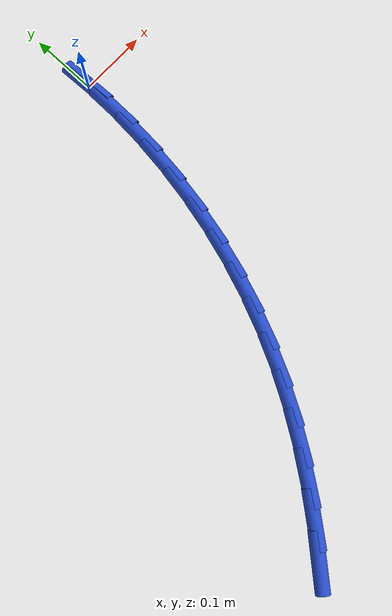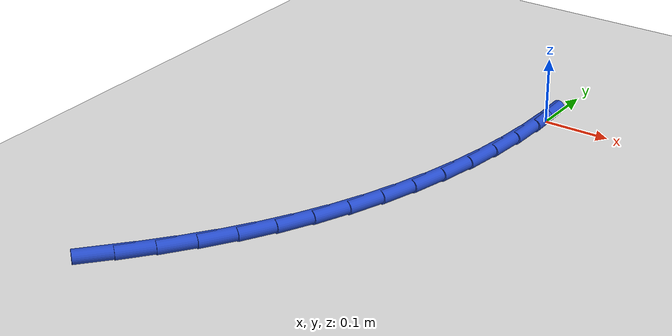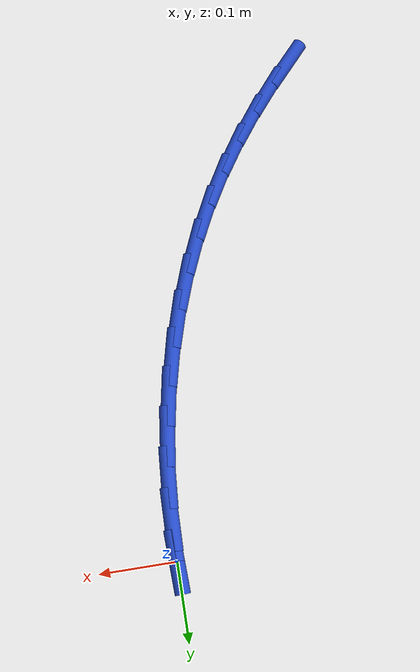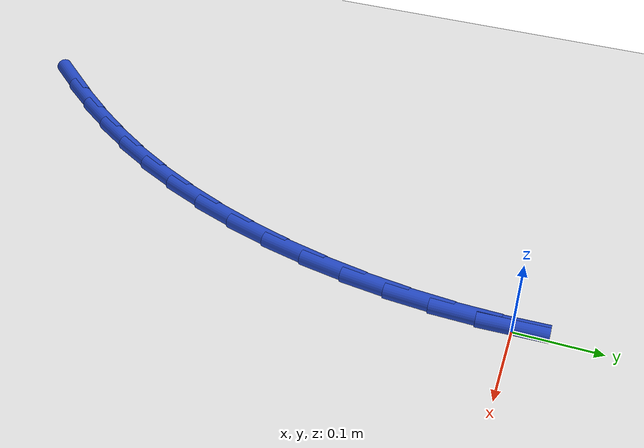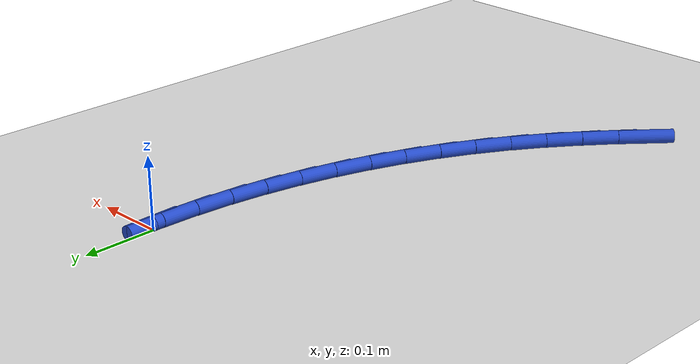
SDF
<sdf version="1.6">
 <world name="default">
  <model name="ground_plane">
   <static>1</static>
   <link name="link">
    <collision name="collision">
     <geometry><plane><normal>0 0 1</normal><size>100 100</size></plane></geometry>
     <surface><friction><ode><mu>100</mu><mu2>50</mu2></ode></friction></surface>
    </collision>
    <visual name="visual">
     <cast_shadows>0</cast_shadows>
     <geometry><plane><normal>0 0 1</normal><size>100 100</size></plane></geometry>
     <material>
      <script><uri>file://media/materials/scripts/gazebo.material</uri><name>Gazebo/WhiteGlow</name></script>
     </material>
    </visual>
   </link>
  </model>
  <model name="line">
   <link name="link_0">
    <pose>3.469446951953614e-17 -1.1102230246251565e-16 0.01 0 1.57 -1.5357895519023885</pose>
    <collision name="collision">
     <geometry><cylinder><radius>0.01</radius><length>0.08</length></cylinder></geometry>
    </collision>
    <visual name="visual">
     <material>
      <script><name>Gazebo/Blue</name><uri>file://media/materials/scripts/gazebo.material</uri></script>
     </material>
     <geometry><cylinder><radius>0.01</radius><length>0.08</length></cylinder></geometry>
    </visual>
   </link>
   <link name="link_116">
    <pose>-0.262826676153912 -0.6677838770734105 0.01 0 1.57 0.8456186010978372</pose>
    <collision name="collision">
     <geometry><cylinder><radius>0.01</radius><length>0.08</length></cylinder></geometry>
    </collision>
    <visual name="visual">
     <material>
      <script><name>Gazebo/Blue</name><uri>file://media/materials/scripts/gazebo.material</uri></script>
     </material>
     <geometry><cylinder><radius>0.01</radius><length>0.08</length></cylinder></geometry>
    </visual>
   </link>
   <link name="link_117">
    <pose>-0.22803801395639403 -0.6285310033821992 0.01 0 1.57 0.8916055015605825</pose>
    <collision name="collision">
     <geometry><cylinder><radius>0.01</radius><length>0.08</length></cylinder></geometry>
    </collision>
    <visual name="visual">
     <material>
      <script><name>Gazebo/Blue</name><uri>file://media/materials/scripts/gazebo.material</uri></script>
     </material>
     <geometry><cylinder><radius>0.01</radius><length>0.08</length></cylinder></geometry>
    </visual>
   </link>
   <link name="link_118">
    <pose>-0.19515912406030184 -0.5878052318352132 0.01 0 1.57 0.9413521287892618</pose>
    <collision name="collision">
     <geometry><cylinder><radius>0.01</radius><length>0.08</length></cylinder></geometry>
    </collision>
    <visual name="visual">
     <material>
      <script><name>Gazebo/Blue</name><uri>file://media/materials/scripts/gazebo.material</uri></script>
     </material>
     <geometry><cylinder><radius>0.01</radius><length>0.08</length></cylinder></geometry>
    </visual>
   </link>
   <link name="link_119">
    <pose>-0.16439402503259626 -0.5455607884081195 0.01 0 1.57 0.9948783877680683</pose>
    <collision name="collision">
     <geometry><cylinder><radius>0.01</radius><length>0.08</length></cylinder></geometry>
    </collision>
    <visual name="visual">
     <material>
      <script><name>Gazebo/Blue</name><uri>file://media/materials/scripts/gazebo.material</uri></script>
     </material>
     <geometry><cylinder><radius>0.01</radius><length>0.08</length></cylinder></geometry>
    </visual>
   </link>
   <link name="link_120">
    <pose>-0.1359467354402368 -0.5017518990765848 0.01 0 1.57 1.052114818155305</pose>
    <collision name="collision">
     <geometry><cylinder><radius>0.01</radius><length>0.08</length></cylinder></geometry>
    </collision>
    <visual name="visual">
     <material>
      <script><name>Gazebo/Blue</name><uri>file://media/materials/scripts/gazebo.material</uri></script>
     </material>
     <geometry><cylinder><radius>0.01</radius><length>0.08</length></cylinder></geometry>
    </visual>
   </link>
   <link name="link_121">
    <pose>-0.11002108807205163 -0.4563330427307987 0.01 0 1.57 1.1114599568832704</pose>
    <collision name="collision">
     <geometry><cylinder><radius>0.01</radius><length>0.08</length></cylinder></geometry>
    </collision>
    <visual name="visual">
     <material>
      <script><name>Gazebo/Blue</name><uri>file://media/materials/scripts/gazebo.material</uri></script>
     </material>
     <geometry><cylinder><radius>0.01</radius><length>0.08</length></cylinder></geometry>
    </visual>
   </link>
   <link name="link_122">
    <pose>-0.08677080241167748 -0.4093269214827804 0.01 0 1.57 1.1695502784356944</pose>
    <collision name="collision">
     <geometry><cylinder><radius>0.01</radius><length>0.08</length></cylinder></geometry>
    </collision>
    <visual name="visual">
     <material>
      <script><name>Gazebo/Blue</name><uri>file://media/materials/scripts/gazebo.material</uri></script>
     </material>
     <geometry><cylinder><radius>0.01</radius><length>0.08</length></cylinder></geometry>
    </visual>
   </link>
   <link name="link_123">
    <pose>-0.06623199466515685 -0.3609163401251538 0.01 0 1.57 1.2261561652354902</pose>
    <collision name="collision">
     <geometry><cylinder><radius>0.01</radius><length>0.08</length></cylinder></geometry>
    </collision>
    <visual name="visual">
     <material>
      <script><name>Gazebo/Blue</name><uri>file://media/materials/scripts/gazebo.material</uri></script>
     </material>
     <geometry><cylinder><radius>0.01</radius><length>0.08</length></cylinder></geometry>
    </visual>
   </link>
   <link name="link_124">
    <pose>-0.04842393004644961 -0.311307044044197 0.01 0 1.57 1.2815642030889756</pose>
    <collision name="collision">
     <geometry><cylinder><radius>0.01</radius><length>0.08</length></cylinder></geometry>
    </collision>
    <visual name="visual">
     <material>
      <script><name>Gazebo/Blue</name><uri>file://media/materials/scripts/gazebo.material</uri></script>
     </material>
     <geometry><cylinder><radius>0.01</radius><length>0.08</length></cylinder></geometry>
    </visual>
   </link>
   <link name="link_125">
    <pose>-0.03336587376951475 -0.26070477862618596 0.01 0 1.57 1.3360738655170805</pose>
    <collision name="collision">
     <geometry><cylinder><radius>0.01</radius><length>0.08</length></cylinder></geometry>
    </collision>
    <visual name="visual">
     <material>
      <script><name>Gazebo/Blue</name><uri>file://media/materials/scripts/gazebo.material</uri></script>
     </material>
     <geometry><cylinder><radius>0.01</radius><length>0.08</length></cylinder></geometry>
    </visual>
   </link>
   <link name="link_126">
    <pose>-0.02107709104831133 -0.20931528925739662 0.01 0 1.57 1.3899935035887891</pose>
    <collision name="collision">
     <geometry><cylinder><radius>0.01</radius><length>0.08</length></cylinder></geometry>
    </collision>
    <visual name="visual">
     <material>
      <script><name>Gazebo/Blue</name><uri>file://media/materials/scripts/gazebo.material</uri></script>
     </material>
     <geometry><cylinder><radius>0.01</radius><length>0.08</length></cylinder></geometry>
    </visual>
   </link>
   <link name="link_127">
    <pose>-0.011576847096799004 -0.15734432132410714 0.01 0 1.57 1.4436377818604242</pose>
    <collision name="collision">
     <geometry><cylinder><radius>0.01</radius><length>0.08</length></cylinder></geometry>
    </collision>
    <visual name="visual">
     <material>
      <script><name>Gazebo/Blue</name><uri>file://media/materials/scripts/gazebo.material</uri></script>
     </material>
     <geometry><cylinder><radius>0.01</radius><length>0.08</length></cylinder></geometry>
    </visual>
   </link>
   <link name="link_128">
    <pose>-0.004884407128936816 -0.10499762021259348 0.01 0 1.57 1.4973260944312914</pose>
    <collision name="collision">
     <geometry><cylinder><radius>0.01</radius><length>0.08</length></cylinder></geometry>
    </collision>
    <visual name="visual">
     <material>
      <script><name>Gazebo/Blue</name><uri>file://media/materials/scripts/gazebo.material</uri></script>
     </material>
     <geometry><cylinder><radius>0.01</radius><length>0.08</length></cylinder></geometry>
    </visual>
   </link>
   <link name="link_129">
    <pose>-0.0010190363586840522 -0.052480931309132284 0.01 0 1.57 1.5513814975793117</pose>
    <collision name="collision">
     <geometry><cylinder><radius>0.01</radius><length>0.08</length></cylinder></geometry>
    </collision>
    <visual name="visual">
     <material>
      <script><name>Gazebo/Blue</name><uri>file://media/materials/scripts/gazebo.material</uri></script>
     </material>
     <geometry><cylinder><radius>0.01</radius><length>0.08</length></cylinder></geometry>
    </visual>
   </link>
   <link name="link_130">
    <pose>3.122502256758253e-17 -2.3592239273284576e-16 0.01 0 1.57 -1.5354629623860219</pose>
    <collision name="collision">
     <geometry><cylinder><radius>0.01</radius><length>0.08</length></cylinder></geometry>
    </collision>
    <visual name="visual">
     <material>
      <script><name>Gazebo/Blue</name><uri>file://media/materials/scripts/gazebo.material</uri></script>
     </material>
     <geometry><cylinder><radius>0.01</radius><length>0.08</length></cylinder></geometry>
    </visual>
   </link>
  </model>
 </world>
</sdf>
